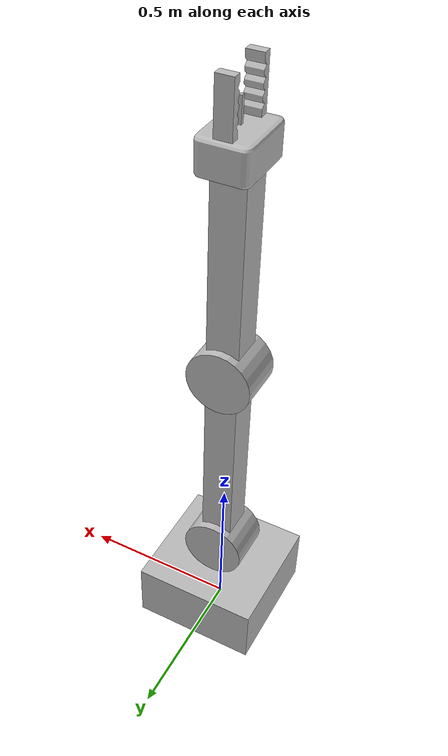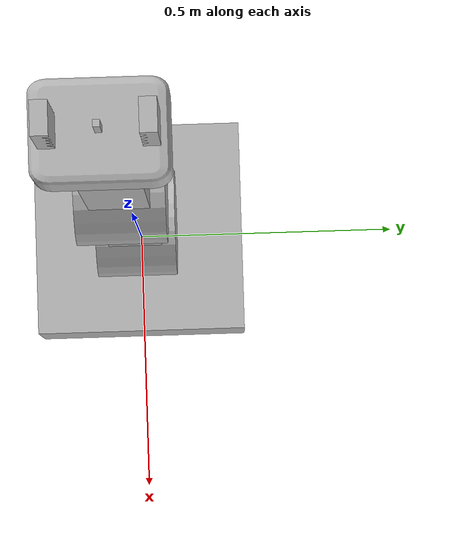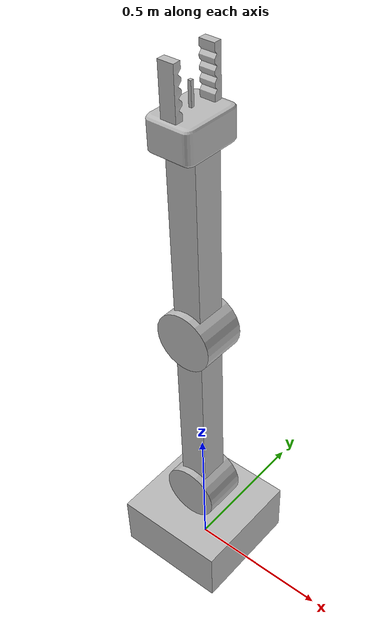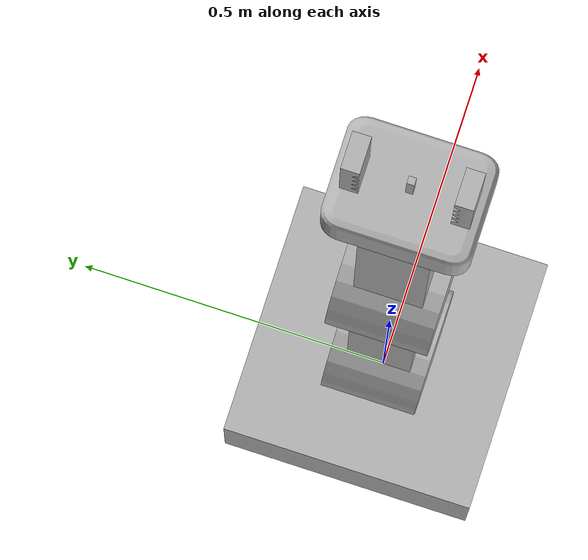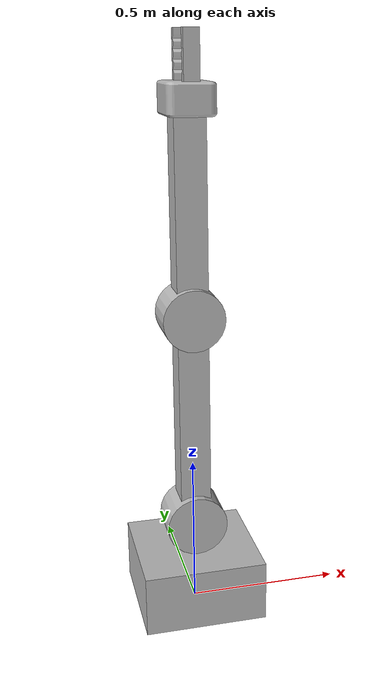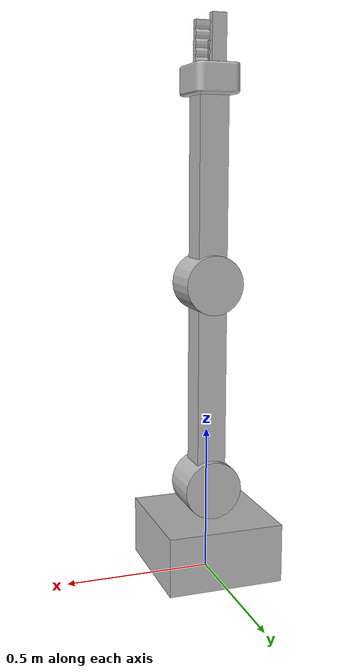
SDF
<?xml version="1.0"?>
<!-- ARM/GRIPPER -->
<sdf version="1.4">
<model name="arm">
	<plugin name="ArmPlugin" filename="libgazeboArmPlugin.so" />
	<static>false</static>

	<link name="base">
	<pose>0 0 .1 0 0 0</pose>
	<inertial>
		<pose>0 0 0 0 0 0</pose>
		<inertia>
			<ixx>0.01</ixx>
			<ixy>0</ixy>
			<ixz>0</ixz>
			<iyy>0.01</iyy>
			<iyz>0</iyz>
			<izz>0.01</izz>
		</inertia>
		<mass>10</mass>
	</inertial>
	<collision name="collision">
		<geometry>
			<box>
				<size>0.4 0.4 0.2</size>
			</box>
		</geometry>
	</collision>
	<visual name="visual">
		<geometry>
			<box>
				<size>0.4 0.4 0.2</size>
			</box>
		</geometry>
	</visual>
	</link>

	<link name="joint1">
	<pose>0 0 0.3 0 1.5707 1.5707</pose>
	<collision name="collision">
		<geometry>
			<cylinder>
				<radius>.1</radius>
				<length>.15</length>
			</cylinder>
		</geometry>
	</collision>
	<visual name="visual">
		<geometry>
			<cylinder>
				<radius>.1</radius>
				<length>.15</length>
			</cylinder>
		</geometry>
	</visual>
	</link>

	<link name="link1">
	<pose>0 0 .66 0 0 0</pose>
	<inertial>
		<mass>.25</mass>
		<inertia>
			<!-- interias are tricky to compute -->
			<ixx>0.083</ixx>
			<!-- for a box: ixx = 0.083 * mass * (y*y + z*z) -->
			<ixy>0.0</ixy>
			<!-- for a box: ixy = 0 -->
			<ixz>0.0</ixz>
			<!-- for a box: ixz = 0 -->
			<iyy>0.083</iyy>
			<!-- for a box: iyy = 0.083 * mass * (x*x + z*z) -->
			<iyz>0.0</iyz>
			<!-- for a box: iyz = 0 -->
			<izz>0.083</izz>
			<!-- for a box: izz = 0.083 * mass * (x*x + y*y) -->
		</inertia>
	</inertial>
	<collision name="collision">
		<geometry>
			<box>
				<size>.1 .1 .6</size>
			</box>
		</geometry>
	</collision>
	<visual name="visual">
		<geometry>
			<box>
				<size>.1 .1 .6</size>
			</box>
		</geometry>
	</visual>
	</link>

	<link name="joint2">
	<pose>0 0 1.01 0 1.5707 1.5707</pose>
	<collision name="collision">
		<geometry>
			<cylinder>
				<radius>.1</radius>
				<length>.15</length>
			</cylinder>
		</geometry>
	</collision>
	<visual name="visual">
		<geometry>
			<cylinder>
				<radius>.1</radius>
				<length>.15</length>
			</cylinder>
		</geometry>
	</visual>
	</link>

	<link name="link2">
	<pose>0 0 1.37 0 0 0</pose>
	<inertial>
		<mass>.2</mass>
		<inertia>
			<ixx>0.083</ixx>
			<ixy>0.0</ixy>
			<ixz>0.0</ixz>
			<iyy>0.083</iyy>
			<iyz>0.0</iyz>
			<izz>0.083</izz>
		</inertia>
	</inertial>
	<collision name="collision2">
		<geometry>
			<box>
				<size>.1 .1 .6</size>
			</box>
		</geometry>
	</collision>
	<visual name="visual2">
		<geometry>
			<box>
				<size>.1 .1 .6</size>
			</box>
		</geometry>
	</visual>
	</link>

	<link name="gripperbase">
		<pose>0 0 1.68 0 0 0</pose>
		<inertial>
			<mass>0.3</mass>
			<inertia>
			  <ixx>0.0001</ixx>
			  <ixy>0</ixy>
			  <ixz>0</ixz>
			  <iyy>0.0002</iyy>
			  <iyz>0</iyz>
			  <izz>0.0001</izz>
			</inertia>
		</inertial>
		<visual name="gripper_link">
			<geometry>
				<mesh><uri>file://meshes/gripper/gripper_base.dae</uri></mesh>
			</geometry>
		</visual>
		<collision name="gripper_link">
			<geometry>
				<mesh><uri>file://meshes/gripper/gripper_base.dae</uri></mesh>
			</geometry>
		</collision>
	</link>

	<link name="gripper_middle">
		<pose>0 0 1.77 0 0 0</pose>
		<collision name="middle_collision">
		<geometry>
			<box>
				<size>.01 .01 .07</size>
			</box>
		</geometry>
		</collision>
		<visual name="middle_vision">
			<geometry>
				<box>
					<size>.01 .01 .07</size>
				</box>
			</geometry>
		</visual>
	</link>

	<link name="gripper_right">
		<pose>0 0.075 1.805 0 -1.57 -3.14</pose>
		<inertial>
			<mass>0.1</mass>
			<inertia>
				<ixx>0.02</ixx>
				<ixy>0</ixy>
				<ixz>0</ixz>
				<iyy>0.0002</iyy>
				<iyz>0</iyz>
				<izz>0.0002</izz>
			</inertia>
		</inertial>
		<visual name="right_gripper">
			<geometry>
				<mesh><uri>file://meshes/gripper/finger_right.dae</uri></mesh>
			</geometry>
		</visual>
		<collision name="right_gripper">
			<geometry>
				<mesh><uri>file://meshes/gripper/finger_right.dae</uri></mesh>
			</geometry>
		</collision>
	</link>

	<link name="gripper_left">
		<pose>0 -0.075 1.805 0 -1.57 -3.14</pose>
		<inertial>
			<mass>0.1</mass>
			<inertia>
				<ixx>0.002</ixx>
				<ixy>0</ixy>
				<ixz>0</ixz>
				<iyy>0.0002</iyy>
				<iyz>0</iyz>
				<izz>0.0002</izz>
			</inertia>
		</inertial>
		<visual name="left_gripper">
			<geometry>
				<mesh><uri>file://meshes/gripper/finger_left.dae</uri></mesh>
			</geometry>
		</visual>
		<collision name="left_gripper">
			<geometry>
				<mesh><uri>file://meshes/gripper/finger_left.dae</uri></mesh>
			</geometry>
		</collision>
	</link>

	<joint name="base" type="revolute">
		<pose>0 0 0 0 0 0</pose>
		<child>base</child>
		<parent>world</parent>
		<axis>
			<limit>
				<lower>-2</lower>
				<upper>2</upper>
			</limit>
			<xyz>0 0 1</xyz>
		</axis>
	</joint>

	<joint name="joint1" type="revolute">
		<pose>0 0 0 0 0 0</pose>
		<child>joint1</child>
		<parent>base</parent>
		<axis>
			<limit>
				<lower>-2</lower>
				<upper>2</upper>
			</limit>
			<xyz>0 1 0</xyz>
		</axis>
	</joint>

	<joint name="link1-joint1" type="fixed">
		<pose>0 0 -0.05 0 0 0</pose>
		<child>link1</child>
		<parent>joint1</parent>
		<axis>
			<limit>
				<lower>0</lower>
				<upper>0</upper>
			</limit>
			<xyz>0 1 0</xyz>
		</axis>
	</joint>

	<joint name="joint2" type="revolute">
		<pose>0 0 -0.05 0 0 0</pose>
		<child>joint2</child>
		<parent>link1</parent>
		<axis>
			<limit>
				<lower>-2</lower>
				<upper>2</upper>
			</limit>
			<xyz>0 1 0</xyz>
		</axis>
	</joint>

	<joint name="link2-joint2" type="fixed">
		<pose>0 0 -0.05 0 0 0</pose>
		<child>link2</child>
		<parent>joint2</parent>
		<axis>
			<limit>
				<lower>0</lower>
				<upper>0</upper>
			</limit>
			<xyz>0 1 0</xyz>
		</axis>
	</joint>

	<joint name="gripper_left" type="revolute">
		<pose>0 0 -0.05 0 0 0</pose>
		<child>gripper_left</child>
		<parent>gripperbase</parent>
		<axis>
			<limit>
				<lower>0</lower>
				<upper>0</upper>
			</limit>
			<xyz>0 1 0</xyz>
		</axis>
	</joint>
	<joint name="gripper_right" type="revolute">
		<pose>0 0 -0.05 0 0 0</pose>
		<child>gripper_right</child>
		<parent>gripperbase</parent>
		<axis>
			<limit>
				<lower>0</lower>
				<upper>0</upper>
			</limit>
			<xyz>0 1 0</xyz>
		</axis>
	</joint>

	<joint name="gripperbase" type="fixed">
		<pose>0 0 -0.05 0 0 0</pose>
		<parent>link2</parent>
		<child>gripperbase</child>
		<axis>
			<xyz>0 1 0</xyz>
		</axis>
	</joint>

	<joint name="gripper_middle" type="fixed">
		<pose>0 0 0 0 0 0</pose>
		<parent>gripperbase</parent>
		<child>gripper_middle</child>
		<axis>
			<xyz>0 1 0</xyz>
		</axis>
	</joint>

</model>
</sdf>
